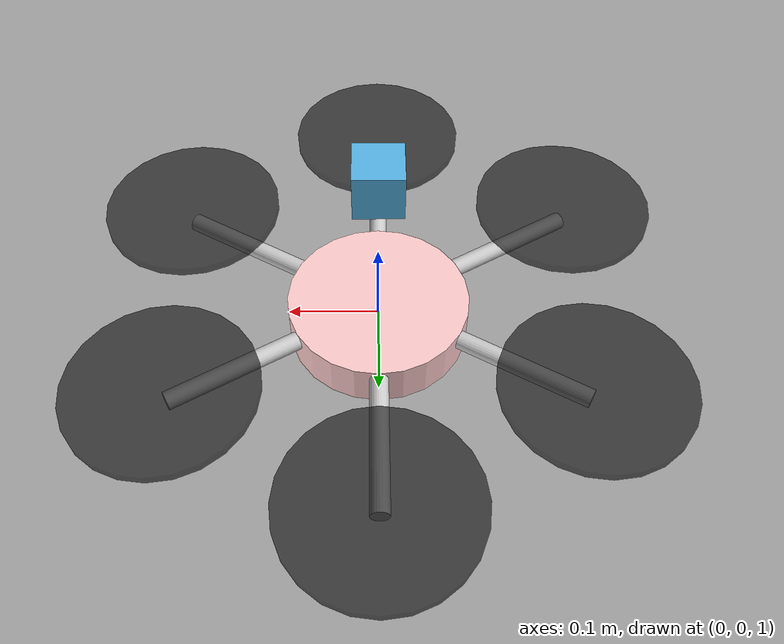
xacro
<?xml version="1.0"?>

<robot xmlns:xacro="http://wiki.ros.org/xacro" name="drone">

  <!-- properties -->
  <xacro:property name="frame_radius" value="0.1"/>
  <xacro:property name="frame_height" value="0.05"/>
  <xacro:property name="frame_mass" value="0.88"/>
  <xacro:property name="arm_radius" value="0.01"/>
  <xacro:property name="arm_length" value="0.15"/>
  <xacro:property name="arm_mass" value="0.01"/>
  <xacro:property name="propeller_radius" value="0.1"/>
  <xacro:property name="propeller_height" value="0.01"/>
  <xacro:property name="propeller_height_offset" value="0.025"/>
  <xacro:property name="propeller_mass" value="0.01"/>

<xacro:macro name="cylinder_inertial" params="radius height mass *origin">
  <inertial>
    <mass value="${mass}"/>
    <xacro:insert_block name="origin"/>
    <inertia
      ixx="${0.0833333 * mass * (3 * radius * radius + height * height)}"
      ixy="0.0"
      ixz="0.0"
      iyy="${0.0833333 * mass * (3 * radius * radius + height * height)}"
      iyz="0.0"
      izz="${0.5 * mass * radius * radius}"/>
  </inertial>
</xacro:macro>

<link name="drone">
  <visual>
    <origin xyz="0 0 1" rpy="0 0 0"/>
    <geometry>
      <cylinder radius="${frame_radius}" length="${frame_height}"/>
    </geometry>
    <material name="frame_material"/>
  </visual>
  <collision>
    <origin xyz="0 0 1" rpy="0 0 0"/>
    <geometry>
      <cylinder radius="${frame_radius}" length="${frame_height}"/>
    </geometry>
  </collision>
  <xacro:cylinder_inertial radius="${frame_radius}" height="${frame_height}" mass="${frame_mass}">
    <origin xyz="0 0 1" rpy="0 0 0" />
  </xacro:cylinder_inertial>
</link>

<link name="camera_link">
  <visual>
  <origin xyz="0 0 1.0" rpy="0 0 -1.5708"/>
    <geometry>
      <box size="0.05 0.05 0.05"/>
    </geometry>
  </visual>
 <collision>
    <geometry>
      <box size="0.05 0.05 0.05"/>
    </geometry>
  </collision>
  <inertial>
    <mass value="0.0000000001"/>
    <origin rpy="0 0 0" xyz="0 0 1.0"/>
    <inertia ixx="0.000001" ixy="0.000001" ixz="0.000001" iyy="0.000001" iyz="0.000001" izz="0.000001"/>
  </inertial>
  <material name="camera_material"/>
</link>

<joint name="camera_joint" type="fixed">
  <parent link="drone"/>
  <child link="camera_link"/>
  <origin xyz="0 0 0.2" rpy="0 0 0"/>
  <axis xyz="1 0 0"/>
  <limit lower="-3.14159" upper="3.14159" effort="10" velocity="3.14159"/>
</joint>

<xacro:macro name="arm" params="i">
  <link name="arm${i}">
    <visual>
      <origin xyz="${cos((i-1)*pi/3+pi/6)*(frame_radius+arm_length/2)} ${sin((i-1)*pi/3+pi/6)*(frame_radius+arm_length/2)} ${(frame_height+2)/2-arm_radius}" rpy="0 ${pi/2} ${(i-1)*pi/3+pi/6}"/>
      <geometry>
        <cylinder radius="${arm_radius}" length="${arm_length}"/>
      </geometry>
      <material name="arm_material"/>
    </visual>
    <collision>
      <origin xyz="${cos((i-1)*pi/3+pi/6)*(frame_radius+arm_length/2)} ${sin((i-1)*pi/3+pi/6)*(frame_radius+arm_length/2)} ${(frame_height+2)/2-arm_radius}" rpy="0 ${pi/2} ${(i-1)*pi/3+pi/6}"/>
      <geometry>
        <cylinder radius="${arm_radius}" length="${arm_length}"/>
      </geometry>
    </collision>
    <xacro:cylinder_inertial radius="${arm_radius}" height="${arm_length}" mass="${arm_mass}">
      <origin xyz="${cos((i-1)*pi/3+pi/6)*(frame_radius+arm_length/2)} ${sin((i-1)*pi/3+pi/6)*(frame_radius+arm_length/2)} ${(frame_height+2)/2-arm_radius}" rpy="0 ${pi/2} ${(i-1)*pi/3+pi/6}"/>
    </xacro:cylinder_inertial>
  </link>
<joint name="frame_arm${i}" type="fixed">
  <parent link="drone"/>
  <child link="arm${i}"/>
</joint>
    <gazebo reference="arm${i}">
      <material>Gazebo/Blue</material>
    </gazebo>
</xacro:macro>

<xacro:macro name="propeller" params="i mat">
  <link name="propeller${i}">
    <visual>
      <origin xyz="0 0 1" rpy="0 0 0"/>
      <geometry>
        <cylinder radius="${propeller_radius}" length="${propeller_height}"/>
      </geometry>
      <material name="propeller_material"/>
    </visual>
    <collision>
      <origin xyz="0 0 1" rpy="0 0 0"/>
      <geometry>
        <cylinder radius="${propeller_radius}" length="${propeller_height}"/>
      </geometry>
    </collision>
    <xacro:cylinder_inertial radius="${propeller_radius}" height="${propeller_height}" mass="${propeller_mass}">
      <origin xyz="0 0 1" rpy="0 0 0"/>
    </xacro:cylinder_inertial>
  </link>
<joint name="arm${i}_propeller${i}" type="revolute">
  <parent link="arm${i}"/>
  <child link="propeller${i}"/>
  <origin xyz="${cos((i-1)*pi/3+pi/6)*(frame_radius+arm_length)} ${sin((i-1)*pi/3+pi/6)*(frame_radius+arm_length)} ${frame_height/2-arm_radius+propeller_height_offset}" rpy="0 0 0"/>
  <axis xyz="1 0 0"/>
  <limit lower="0" upper="0" effort="0" velocity="0"/>
</joint>
    <gazebo reference="propeller${i}">
      <material>${mat}</material>
    </gazebo>
</xacro:macro>

<!-- Xacro -->
<xacro:arm i="1"/>
<xacro:arm i="2"/>
<xacro:arm i="3"/>
<xacro:arm i="4"/>
<xacro:arm i="5"/>
<xacro:arm i="6"/>

<xacro:propeller i="1" mat="Gazebo/RedTransparent"/>
<xacro:propeller i="2" mat="Gazebo/BlackTransparent"/>
<xacro:propeller i="3" mat="Gazebo/BlueTransparent"/>
<xacro:propeller i="4" mat="Gazebo/BlueTransparent"/>
<xacro:propeller i="5" mat="Gazebo/BlackTransparent"/>
<xacro:propeller i="6" mat="Gazebo/RedTransparent"/>

  <!-- materials-->

<gazebo reference="drone">
  <material>Gazebo/Orange</material>
</gazebo>

<gazebo reference="depth_camera">
  <material>Gazebo/Yellow</material>
</gazebo>

<material name="frame_material">
  <color rgba="1 0.8 0.8 1"/>
</material>

<material name="arm_material">
  <color rgba="0.8 0.8 0.8 1"/>
</material>

<material name="propeller_material">
  <color rgba="0 0 0 0.6"/>
</material>

<material name="camera_material">
  <color rgba="1 0 0 0.6"/>
</material>

<!-- Plugins -->

<!-- Z Controller -->
<gazebo>
    <plugin name="drone_plugin" filename="libdrone_plugin.so">
      <updateRate>20</updateRate>
    </plugin>
  </gazebo>

<!-- X-Y Controller -->
<gazebo>
  <plugin name="object_controller" filename="libgazebo_ros_planar_move.so">
    <commandTopic>cmd_vel</commandTopic>
    <odometryTopic>odom</odometryTopic>
    <odometryFrame>odom</odometryFrame>
    <odometryRate>20.0</odometryRate>
    <robotBaseFrame>drone</robotBaseFrame>
  </plugin>
</gazebo>

 <gazebo>
    <plugin name="gazebo_ros_control" filename="libgazebo_ros_control.so">
      <legacyModeNS>true</legacyModeNS>
    </plugin>
  </gazebo>

  <gazebo reference="camera_link">
   <sensor name="camera" type="depth">
        <update_rate>20</update_rate>
        <camera>
          <horizontal_fov>1.047198</horizontal_fov>
          <image>
            <width>80</width>
            <height>60</height>
            <format>R8G8B8</format>
          </image>
          <clip>
            <near>0.05</near>
            <far>3</far>
          </clip>
        </camera>
         <plugin name="camera_plugin" filename="libgazebo_ros_openni_kinect.so">
          <baseline>0.2</baseline>
          <alwaysOn>true</alwaysOn>
          <updateRate>0.0</updateRate>
          <cameraName>camera_ir</cameraName>
          <imageTopicName>/camera/color/image_raw</imageTopicName>
          <cameraInfoTopicName>/camera/color/camera_info</cameraInfoTopicName>
          <depthImageTopicName>/camera/depth/image_raw</depthImageTopicName>
          <depthImageCameraInfoTopicName>/camera/depth/camera_info</depthImageCameraInfoTopicName>
          <pointCloudTopicName>/camera/depth/points</pointCloudTopicName>
          <frameName>camera_link</frameName>
          <pointCloudCutoff>0.5</pointCloudCutoff>
          <pointCloudCutoffMax>3.0</pointCloudCutoffMax>
          <distortionK1>0</distortionK1>
          <distortionK2>0</distortionK2>
          <distortionK3>0</distortionK3>
          <distortionT1>0</distortionT1>
          <distortionT2>0</distortionT2>
          <CxPrime>0</CxPrime>
          <Cx>0</Cx>
          <Cy>0</Cy>
          <focalLength>0</focalLength>
          <hackBaseline>0</hackBaseline>
        </plugin>
      </sensor>
      </gazebo>

  <!-- camera -->
  <gazebo reference="camera_link">
    <sensor type="camera" name="camera1">
      <update_rate>30.0</update_rate>
      <camera name="head">
        <horizontal_fov>1.3962634</horizontal_fov>
        <image>
          <width>800</width>
          <height>800</height>
          <format>R8G8B8</format>
        </image>
        <clip>
          <near>0.02</near>
          <far>300</far>
        </clip>
        <noise>
          <type>gaussian</type>
          <!-- Noise is sampled independently per pixel on each frame.
               That pixel's noise value is added to each of its color
               channels, which at that point lie in the range [0,1]. -->
          <mean>0.0</mean>
          <stddev>0.007</stddev>
        </noise>
      </camera>
      <plugin name="camera_controller" filename="libgazebo_ros_camera.so">
        <alwaysOn>true</alwaysOn>
        <updateRate>0.0</updateRate>
        <cameraName>robot/camera1</cameraName>
        <imageTopicName>/robot/camera1/image_raw</imageTopicName>
        <cameraInfoTopicName>camera_info</cameraInfoTopicName>
        <frameName>camera_link</frameName>
        <hackBaseline>0.07</hackBaseline>
        <distortionK1>0.0</distortionK1>
        <distortionK2>0.0</distortionK2>
        <distortionK3>0.0</distortionK3>
        <distortionT1>0.0</distortionT1>
        <distortionT2>0.0</distortionT2>
      </plugin>
    </sensor>
  </gazebo>

</robot>
